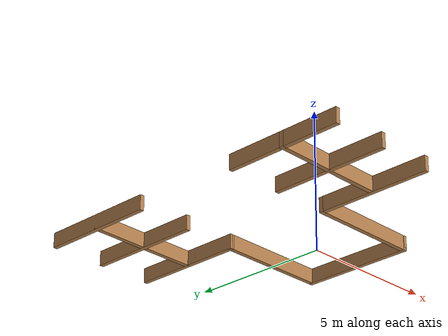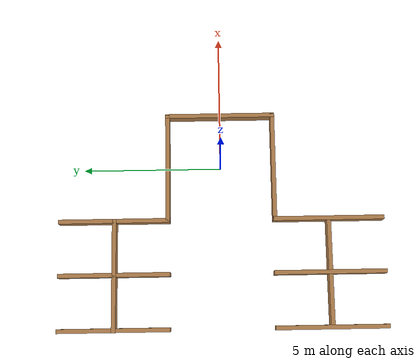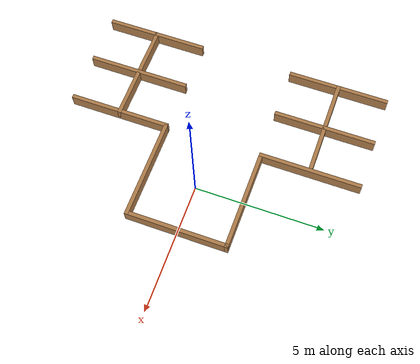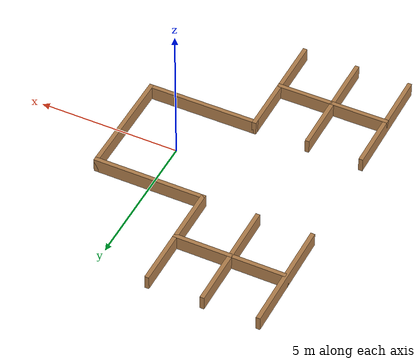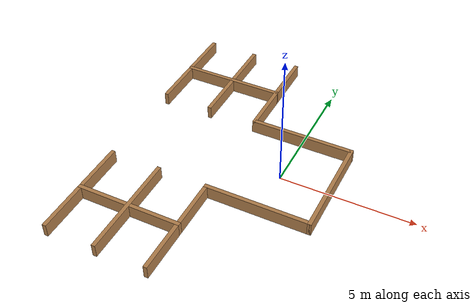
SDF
<?xml version='1.0'?>
<sdf version='1.6'>
  <model name='turtlebot3_square'>
    <pose frame=''>0 0 0 0 -0 0</pose>
    <link name='Wall_0'>
      <collision name='Wall_0_Collision'>
        <geometry>
          <box>
            <size>4 0.15 0.5</size>
          </box>
        </geometry>
        <pose frame=''>0 0 0.25 0 -0 0</pose>
      </collision>
      <visual name='Wall_0_Visual'>
        <pose frame=''>0 0 0.25 0 -0 0</pose>
        <geometry>
          <box>
            <size>4 0.15 0.5</size>
          </box>
        </geometry>
        <material>
          <script>
            <uri>file://media/materials/scripts/gazebo.material</uri>
            <name>Gazebo/Wood</name>
          </script>
          <ambient>1 1 1 1</ambient>
        </material>
      </visual>
      <pose frame=''>0 1.925 0 0 -0 0</pose>
    </link>
    <link name='Wall_2'>
      <collision name='Wall_2_Collision'>
        <geometry>
          <box>
            <size>4 0.15 0.5</size>
          </box>
        </geometry>
        <pose frame=''>0 0 0.25 0 -0 0</pose>
      </collision>
      <visual name='Wall_2_Visual'>
        <pose frame=''>0 0 0.25 0 -0 0</pose>
        <geometry>
          <box>
            <size>4 0.15 0.5</size>
          </box>
        </geometry>
        <material>
          <script>
            <uri>file://media/materials/scripts/gazebo.material</uri>
            <name>Gazebo/Wood</name>
          </script>
          <ambient>1 1 1 1</ambient>
        </material>
      </visual>
      <pose frame=''>-1.925 -3.85 0 0 0 -1.5708</pose>
    </link>
    <link name='Wall_3'>
      <collision name='Wall_3_Collision'>
        <geometry>
          <box>
            <size>4 0.15 0.5</size>
          </box>
        </geometry>
        <pose frame=''>0 0 0.25 0 -0 0</pose>
      </collision>
      <visual name='Wall_3_Visual'>
        <pose frame=''>0 0 0.25 0 -0 0</pose>
        <geometry>
          <box>
            <size>4 0.15 0.5</size>
          </box>
        </geometry>
        <material>
          <script>
            <uri>file://media/materials/scripts/gazebo.material</uri>
            <name>Gazebo/Wood</name>
          </script>
          <ambient>1 1 1 1</ambient>
        </material>
      </visual>
      <pose frame=''>0 -1.925 0 0 -0 0</pose>
    </link>
    <link name='Wall_4'>
      <collision name='Wall_4_Collision'>
        <geometry>
          <box>
            <size>4 0.15 0.5</size>
          </box>
        </geometry>
        <pose frame=''>0 0 0.25 0 -0 0</pose>
      </collision>
      <visual name='Wall_4_Visual'>
        <pose frame=''>0 0 0.25 0 -0 0</pose>
        <geometry>
          <box>
            <size>4 0.15 0.5</size>
          </box>
        </geometry>
        <material>
          <script>
            <uri>file://media/materials/scripts/gazebo.material</uri>
            <name>Gazebo/Wood</name>
          </script>
          <ambient>1 1 1 1</ambient>
        </material>
      </visual>
      <pose frame=''>1.925 0 0 0 -0 1.5708</pose>
    </link>
    <link name='Wall_5'>
      <collision name='Wall_5_Collision'>
        <geometry>
          <box>
            <size>4 0.15 0.5</size>
          </box>
        </geometry>
        <pose frame=''>0 0 0.25 0 -0 0</pose>
      </collision>
      <visual name='Wall_5_Visual'>
        <pose frame=''>0 0 0.25 0 -0 0</pose>
        <geometry>
          <box>
            <size>4 0.15 0.5</size>
          </box>
        </geometry>
        <material>
          <script>
            <uri>file://media/materials/scripts/gazebo.material</uri>
            <name>Gazebo/Wood</name>
          </script>
          <ambient>1 1 1 1</ambient>
        </material>
      </visual>
      <pose frame=''>-1.925 3.85 0 0 -0 -1.5708</pose>
    </link>
    <link name='Wall_6'>
      <collision name='Wall_6_Collision'>
        <geometry>
          <box>
            <size>4 0.15 0.5</size>
          </box>
        </geometry>
        <pose frame=''>0 0 0.25 0 -0 0</pose>
      </collision>
      <visual name='Wall_6_Visual'>
        <pose frame=''>0 0 0.25 0 -0 0</pose>
        <geometry>
          <box>
            <size>4 0.15 0.5</size>
          </box>
        </geometry>
        <material>
          <script>
            <uri>file://media/materials/scripts/gazebo.material</uri>
            <name>Gazebo/Wood</name>
          </script>
          <ambient>1 1 1 1</ambient>
        </material>
      </visual>
      <pose frame=''>-3.85 3.85 0 0 -0 0</pose>
    </link>
    <link name='Wall_7'>
      <collision name='Wall_7_Collision'>
        <geometry>
          <box>
            <size>4 0.15 0.5</size>
          </box>
        </geometry>
        <pose frame=''>0 0 0.25 0 -0 0</pose>
      </collision>
      <visual name='Wall_7_Visual'>
        <pose frame=''>0 0 0.25 0 -0 0</pose>
        <geometry>
          <box>
            <size>4 0.15 0.5</size>
          </box>
        </geometry>
        <material>
          <script>
            <uri>file://media/materials/scripts/gazebo.material</uri>
            <name>Gazebo/Wood</name>
          </script>
          <ambient>1 1 1 1</ambient>
        </material>
      </visual>
      <pose frame=''>-3.85 -3.85 0 0 -0 0</pose>
    </link>
    <link name='Wall_8'>
      <collision name='Wall_8_Collision'>
        <geometry>
          <box>
            <size>4 0.15 0.5</size>
          </box>
        </geometry>
        <pose frame=''>0 0 0.25 0 -0 0</pose>
      </collision>
      <visual name='Wall_8_Visual'>
        <pose frame=''>0 0 0.25 0 -0 0</pose>
        <geometry>
          <box>
            <size>4 0.15 0.5</size>
          </box>
        </geometry>
        <material>
          <script>
            <uri>file://media/materials/scripts/gazebo.material</uri>
            <name>Gazebo/Wood</name>
          </script>
          <ambient>1 1 1 1</ambient>
        </material>
      </visual>
      <pose frame=''>-3.85 -3.85 0 0 0 -1.5708</pose>
    </link>
    <link name='Wall_9'>
      <collision name='Wall_9_Collision'>
        <geometry>
          <box>
            <size>4 0.15 0.5</size>
          </box>
        </geometry>
        <pose frame=''>0 0 0.25 0 -0 0</pose>
      </collision>
      <visual name='Wall_9_Visual'>
        <pose frame=''>0 0 0.25 0 -0 0</pose>
        <geometry>
          <box>
            <size>4 0.15 0.5</size>
          </box>
        </geometry>
        <material>
          <script>
            <uri>file://media/materials/scripts/gazebo.material</uri>
            <name>Gazebo/Wood</name>
          </script>
          <ambient>1 1 1 1</ambient>
        </material>
      </visual>
      <pose frame=''>-3.85 3.85 0 0 -0 -1.5708</pose>
    </link>
    <link name='Wall_10'>
      <collision name='Wall_10_Collision'>
        <geometry>
          <box>
            <size>4 0.15 0.5</size>
          </box>
        </geometry>
        <pose frame=''>0 0 0.25 0 -0 0</pose>
      </collision>
      <visual name='Wall_10_Visual'>
        <pose frame=''>0 0 0.25 0 -0 0</pose>
        <geometry>
          <box>
            <size>4 0.15 0.5</size>
          </box>
        </geometry>
        <material>
          <script>
            <uri>file://media/materials/scripts/gazebo.material</uri>
            <name>Gazebo/Wood</name>
          </script>
          <ambient>1 1 1 1</ambient>
        </material>
      </visual>
      <pose frame=''>-5.775 -3.85 0 0 0 -1.5708</pose>
    </link>
    <link name='Wall_11'>
      <collision name='Wall_11_Collision'>
        <geometry>
          <box>
            <size>4 0.15 0.5</size>
          </box>
        </geometry>
        <pose frame=''>0 0 0.25 0 -0 0</pose>
      </collision>
      <visual name='Wall_11_Visual'>
        <pose frame=''>0 0 0.25 0 -0 0</pose>
        <geometry>
          <box>
            <size>4 0.15 0.5</size>
          </box>
        </geometry>
        <material>
          <script>
            <uri>file://media/materials/scripts/gazebo.material</uri>
            <name>Gazebo/Wood</name>
          </script>
          <ambient>1 1 1 1</ambient>
        </material>
      </visual>
      <pose frame=''>-5.775 3.85 0 0 -0 -1.5708</pose>
    </link>
    <static>1</static>
  </model>
</sdf>
